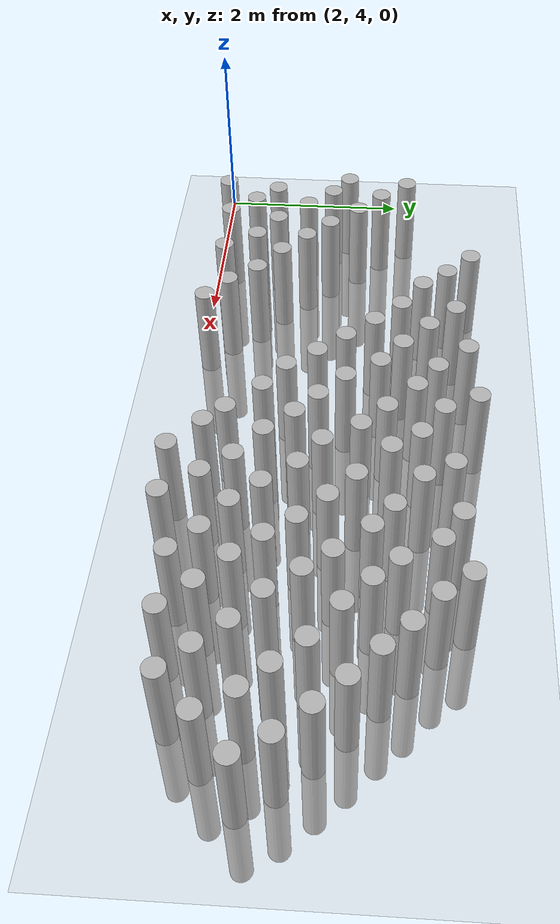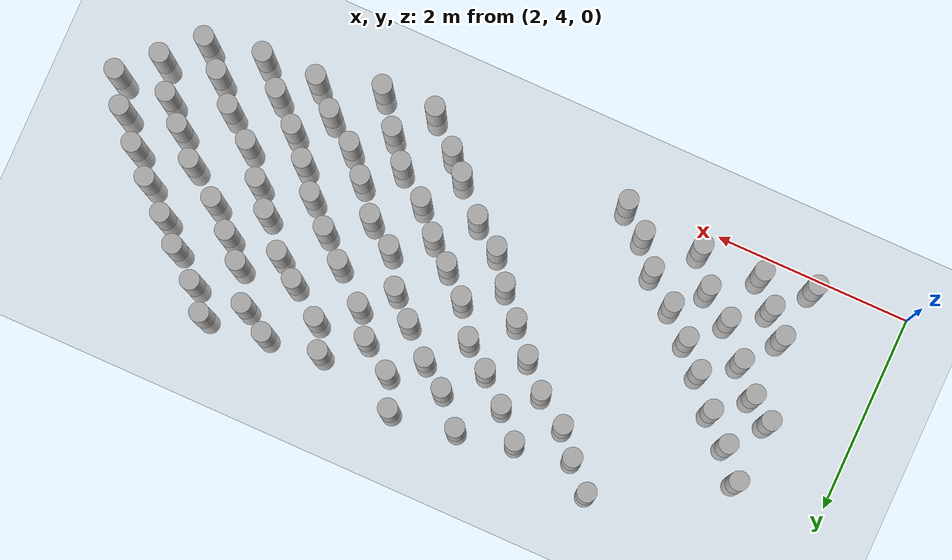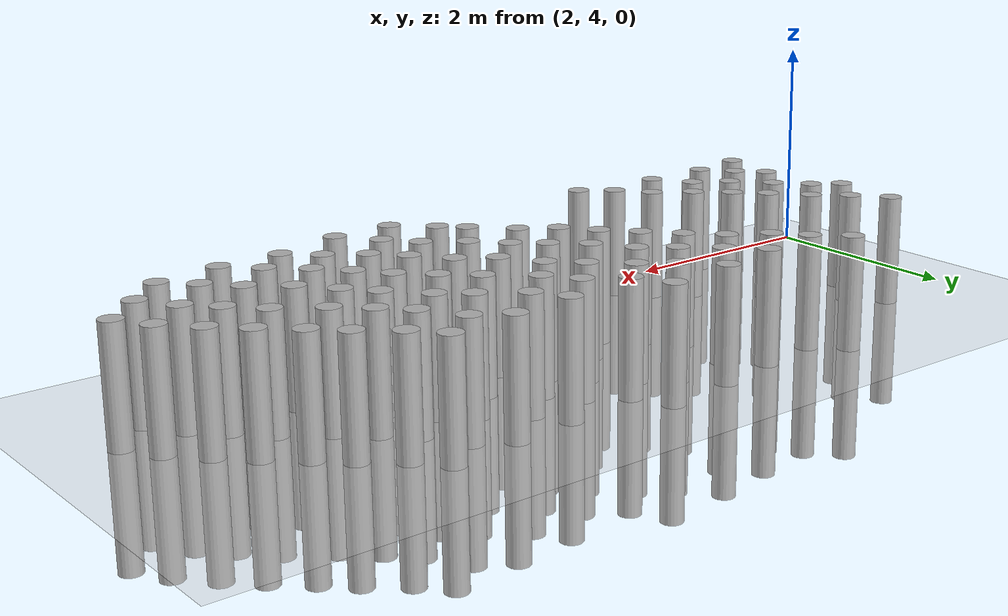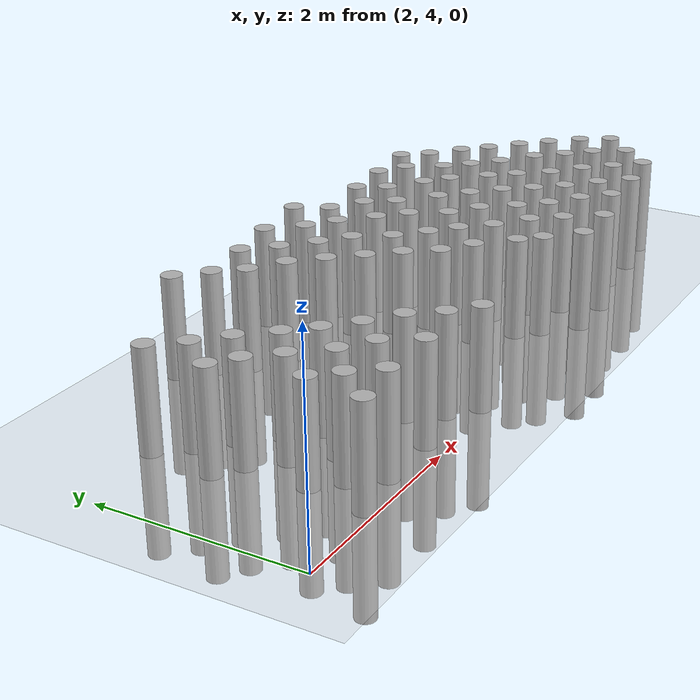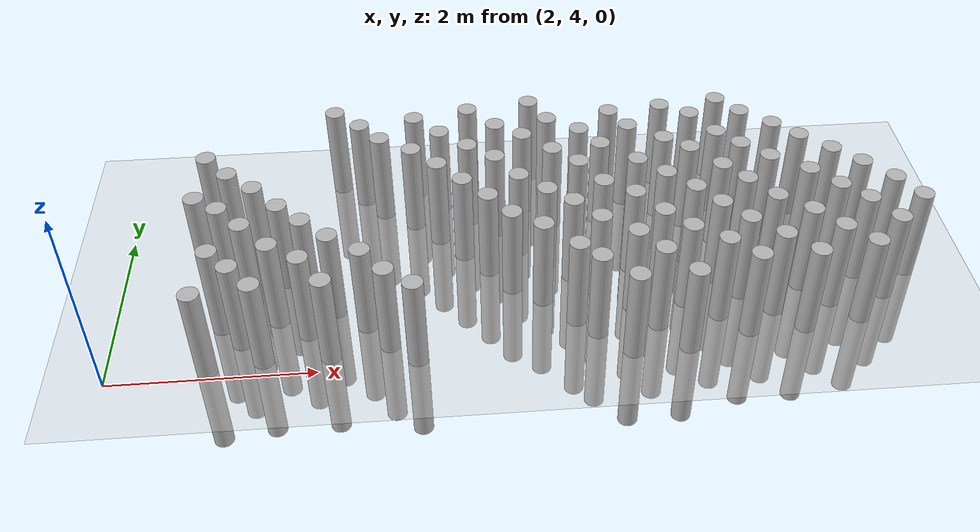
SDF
<sdf version="1.7">
 <world name="farmland_world">
  <model name="ground_plane">
   <static>1</static>
   <link name="link">
    <collision name="collision">
     <geometry><plane><normal>0 0 1</normal><size>40.0 40.0</size></plane></geometry>
     <surface><friction><ode><mu>100</mu><mu2>50</mu2></ode></friction></surface>
    </collision>
    <visual name="visual">
     <cast_shadows>0</cast_shadows>
     <geometry><plane><normal>0 0 1</normal><size>40.0 40.0</size></plane></geometry>
     <material>
      <script><uri>file://media/materials/scripts/gazebo.material</uri><name>Gazebo/Grey</name></script>
     </material>
    </visual>
   </link>
  </model>
  <model name="tree_2_52">
   <static>1</static>
   <link name="link">
    <collision name="collision">
     <geometry><cylinder><radius>0.1</radius><length>2.0</length></cylinder></geometry>
     <surface><friction><ode><mu>100</mu><mu2>50</mu2></ode></friction></surface>
    </collision>
    <visual name="visual">
     <geometry><cylinder><radius>0.1</radius><length>2.0</length></cylinder></geometry>
    </visual>
   </link>
   <pose>2.9489001663448877 4.1072925798245254 0 0 0 0</pose>
  </model>
  <model name="tree_2_88">
   <static>1</static>
   <link name="link">
    <collision name="collision">
     <geometry><cylinder><radius>0.1</radius><length>2.0</length></cylinder></geometry>
     <surface><friction><ode><mu>100</mu><mu2>50</mu2></ode></friction></surface>
    </collision>
    <visual name="visual">
     <geometry><cylinder><radius>0.1</radius><length>2.0</length></cylinder></geometry>
    </visual>
   </link>
   <pose>4.935990651242062 4.099398160405823 0 0 0 0</pose>
  </model>
  <model name="tree_2_89">
   <static>1</static>
   <link name="link">
    <collision name="collision">
     <geometry><cylinder><radius>0.1</radius><length>2.0</length></cylinder></geometry>
     <surface><friction><ode><mu>100</mu><mu2>50</mu2></ode></friction></surface>
    </collision>
    <visual name="visual">
     <geometry><cylinder><radius>0.1</radius><length>2.0</length></cylinder></geometry>
    </visual>
   </link>
   <pose>4.672233327055413 4.307275855355659 0 0 0 0</pose>
  </model>
  <model name="tree_2_90">
   <static>1</static>
   <link name="link">
    <collision name="collision">
     <geometry><cylinder><radius>0.1</radius><length>2.0</length></cylinder></geometry>
     <surface><friction><ode><mu>100</mu><mu2>50</mu2></ode></friction></surface>
    </collision>
    <visual name="visual">
     <geometry><cylinder><radius>0.1</radius><length>2.0</length></cylinder></geometry>
    </visual>
   </link>
   <pose>4.45335299349626 4.590218611323772 0 0 0 0</pose>
  </model>
  <model name="tree_2_91">
   <static>1</static>
   <link name="link">
    <collision name="collision">
     <geometry><cylinder><radius>0.1</radius><length>2.0</length></cylinder></geometry>
     <surface><friction><ode><mu>100</mu><mu2>50</mu2></ode></friction></surface>
    </collision>
    <visual name="visual">
     <geometry><cylinder><radius>0.1</radius><length>2.0</length></cylinder></geometry>
    </visual>
   </link>
   <pose>4.1443980630596675 4.81917371125957 0 0 0 0</pose>
  </model>
  <model name="tree_2_92">
   <static>1</static>
   <link name="link">
    <collision name="collision">
     <geometry><cylinder><radius>0.1</radius><length>2.0</length></cylinder></geometry>
     <surface><friction><ode><mu>100</mu><mu2>50</mu2></ode></friction></surface>
    </collision>
    <visual name="visual">
     <geometry><cylinder><radius>0.1</radius><length>2.0</length></cylinder></geometry>
    </visual>
   </link>
   <pose>3.8798400783259805 5.067151956207987 0 0 0 0</pose>
  </model>
  <model name="tree_2_93">
   <static>1</static>
   <link name="link">
    <collision name="collision">
     <geometry><cylinder><radius>0.1</radius><length>2.0</length></cylinder></geometry>
     <surface><friction><ode><mu>100</mu><mu2>50</mu2></ode></friction></surface>
    </collision>
    <visual name="visual">
     <geometry><cylinder><radius>0.1</radius><length>2.0</length></cylinder></geometry>
    </visual>
   </link>
   <pose>3.6448416500031633 5.3050235630585645 0 0 0 0</pose>
  </model>
  <model name="tree_2_94">
   <static>1</static>
   <link name="link">
    <collision name="collision">
     <geometry><cylinder><radius>0.1</radius><length>2.0</length></cylinder></geometry>
     <surface><friction><ode><mu>100</mu><mu2>50</mu2></ode></friction></surface>
    </collision>
    <visual name="visual">
     <geometry><cylinder><radius>0.1</radius><length>2.0</length></cylinder></geometry>
    </visual>
   </link>
   <pose>3.384849614259451 5.602406203497972 0 0 0 0</pose>
  </model>
  <model name="tree_2_95">
   <static>1</static>
   <link name="link">
    <collision name="collision">
     <geometry><cylinder><radius>0.1</radius><length>2.0</length></cylinder></geometry>
     <surface><friction><ode><mu>100</mu><mu2>50</mu2></ode></friction></surface>
    </collision>
    <visual name="visual">
     <geometry><cylinder><radius>0.1</radius><length>2.0</length></cylinder></geometry>
    </visual>
   </link>
   <pose>3.1173107896745393 5.845019985883678 0 0 0 0</pose>
  </model>
  <model name="tree_2_96">
   <static>1</static>
   <link name="link">
    <collision name="collision">
     <geometry><cylinder><radius>0.1</radius><length>2.0</length></cylinder></geometry>
     <surface><friction><ode><mu>100</mu><mu2>50</mu2></ode></friction></surface>
    </collision>
    <visual name="visual">
     <geometry><cylinder><radius>0.1</radius><length>2.0</length></cylinder></geometry>
    </visual>
   </link>
   <pose>2.8831499700633443 6.127902583696255 0 0 0 0</pose>
  </model>
  <model name="tree_2_124">
   <static>1</static>
   <link name="link">
    <collision name="collision">
     <geometry><cylinder><radius>0.1</radius><length>2.0</length></cylinder></geometry>
     <surface><friction><ode><mu>100</mu><mu2>50</mu2></ode></friction></surface>
    </collision>
    <visual name="visual">
     <geometry><cylinder><radius>0.1</radius><length>2.0</length></cylinder></geometry>
    </visual>
   </link>
   <pose>6.995804339897602 4.037243880707745 0 0 0 0</pose>
  </model>
  <model name="tree_2_125">
   <static>1</static>
   <link name="link">
    <collision name="collision">
     <geometry><cylinder><radius>0.1</radius><length>2.0</length></cylinder></geometry>
     <surface><friction><ode><mu>100</mu><mu2>50</mu2></ode></friction></surface>
    </collision>
    <visual name="visual">
     <geometry><cylinder><radius>0.1</radius><length>2.0</length></cylinder></geometry>
    </visual>
   </link>
   <pose>6.689996261853336 4.322970217811387 0 0 0 0</pose>
  </model>
  <model name="tree_2_126">
   <static>1</static>
   <link name="link">
    <collision name="collision">
     <geometry><cylinder><radius>0.1</radius><length>2.0</length></cylinder></geometry>
     <surface><friction><ode><mu>100</mu><mu2>50</mu2></ode></friction></surface>
    </collision>
    <visual name="visual">
     <geometry><cylinder><radius>0.1</radius><length>2.0</length></cylinder></geometry>
    </visual>
   </link>
   <pose>6.504435513502165 4.507561749069126 0 0 0 0</pose>
  </model>
  <model name="tree_2_127">
   <static>1</static>
   <link name="link">
    <collision name="collision">
     <geometry><cylinder><radius>0.1</radius><length>2.0</length></cylinder></geometry>
     <surface><friction><ode><mu>100</mu><mu2>50</mu2></ode></friction></surface>
    </collision>
    <visual name="visual">
     <geometry><cylinder><radius>0.1</radius><length>2.0</length></cylinder></geometry>
    </visual>
   </link>
   <pose>6.198581848636614 4.820912335371963 0 0 0 0</pose>
  </model>
  <model name="tree_2_128">
   <static>1</static>
   <link name="link">
    <collision name="collision">
     <geometry><cylinder><radius>0.1</radius><length>2.0</length></cylinder></geometry>
     <surface><friction><ode><mu>100</mu><mu2>50</mu2></ode></friction></surface>
    </collision>
    <visual name="visual">
     <geometry><cylinder><radius>0.1</radius><length>2.0</length></cylinder></geometry>
    </visual>
   </link>
   <pose>5.909500061613501 5.020619323794721 0 0 0 0</pose>
  </model>
  <model name="tree_2_129">
   <static>1</static>
   <link name="link">
    <collision name="collision">
     <geometry><cylinder><radius>0.1</radius><length>2.0</length></cylinder></geometry>
     <surface><friction><ode><mu>100</mu><mu2>50</mu2></ode></friction></surface>
    </collision>
    <visual name="visual">
     <geometry><cylinder><radius>0.1</radius><length>2.0</length></cylinder></geometry>
    </visual>
   </link>
   <pose>5.694934780227359 5.305046025492906 0 0 0 0</pose>
  </model>
  <model name="tree_2_130">
   <static>1</static>
   <link name="link">
    <collision name="collision">
     <geometry><cylinder><radius>0.1</radius><length>2.0</length></cylinder></geometry>
     <surface><friction><ode><mu>100</mu><mu2>50</mu2></ode></friction></surface>
    </collision>
    <visual name="visual">
     <geometry><cylinder><radius>0.1</radius><length>2.0</length></cylinder></geometry>
    </visual>
   </link>
   <pose>5.4549401458098945 5.571611618630078 0 0 0 0</pose>
  </model>
  <model name="tree_2_131">
   <static>1</static>
   <link name="link">
    <collision name="collision">
     <geometry><cylinder><radius>0.1</radius><length>2.0</length></cylinder></geometry>
     <surface><friction><ode><mu>100</mu><mu2>50</mu2></ode></friction></surface>
    </collision>
    <visual name="visual">
     <geometry><cylinder><radius>0.1</radius><length>2.0</length></cylinder></geometry>
    </visual>
   </link>
   <pose>5.2123429141032895 5.847522400009467 0 0 0 0</pose>
  </model>
  <model name="tree_2_132">
   <static>1</static>
   <link name="link">
    <collision name="collision">
     <geometry><cylinder><radius>0.1</radius><length>2.0</length></cylinder></geometry>
     <surface><friction><ode><mu>100</mu><mu2>50</mu2></ode></friction></surface>
    </collision>
    <visual name="visual">
     <geometry><cylinder><radius>0.1</radius><length>2.0</length></cylinder></geometry>
    </visual>
   </link>
   <pose>4.955706828155372 6.109414722371271 0 0 0 0</pose>
  </model>
  <model name="tree_2_133">
   <static>1</static>
   <link name="link">
    <collision name="collision">
     <geometry><cylinder><radius>0.1</radius><length>2.0</length></cylinder></geometry>
     <surface><friction><ode><mu>100</mu><mu2>50</mu2></ode></friction></surface>
    </collision>
    <visual name="visual">
     <geometry><cylinder><radius>0.1</radius><length>2.0</length></cylinder></geometry>
    </visual>
   </link>
   <pose>4.633271214124874 6.320818459886796 0 0 0 0</pose>
  </model>
  <model name="tree_2_134">
   <static>1</static>
   <link name="link">
    <collision name="collision">
     <geometry><cylinder><radius>0.1</radius><length>2.0</length></cylinder></geometry>
     <surface><friction><ode><mu>100</mu><mu2>50</mu2></ode></friction></surface>
    </collision>
    <visual name="visual">
     <geometry><cylinder><radius>0.1</radius><length>2.0</length></cylinder></geometry>
    </visual>
   </link>
   <pose>4.4245223692842295 6.570374595479188 0 0 0 0</pose>
  </model>
  <model name="tree_2_135">
   <static>1</static>
   <link name="link">
    <collision name="collision">
     <geometry><cylinder><radius>0.1</radius><length>2.0</length></cylinder></geometry>
     <surface><friction><ode><mu>100</mu><mu2>50</mu2></ode></friction></surface>
    </collision>
    <visual name="visual">
     <geometry><cylinder><radius>0.1</radius><length>2.0</length></cylinder></geometry>
    </visual>
   </link>
   <pose>4.164202467520245 6.818375993160574 0 0 0 0</pose>
  </model>
  <model name="tree_2_161">
   <static>1</static>
   <link name="link">
    <collision name="collision">
     <geometry><cylinder><radius>0.1</radius><length>2.0</length></cylinder></geometry>
     <surface><friction><ode><mu>100</mu><mu2>50</mu2></ode></friction></surface>
    </collision>
    <visual name="visual">
     <geometry><cylinder><radius>0.1</radius><length>2.0</length></cylinder></geometry>
    </visual>
   </link>
   <pose>8.723759081778155 4.230052489268849 0 0 0 0</pose>
  </model>
  <model name="tree_2_162">
   <static>1</static>
   <link name="link">
    <collision name="collision">
     <geometry><cylinder><radius>0.1</radius><length>2.0</length></cylinder></geometry>
     <surface><friction><ode><mu>100</mu><mu2>50</mu2></ode></friction></surface>
    </collision>
    <visual name="visual">
     <geometry><cylinder><radius>0.1</radius><length>2.0</length></cylinder></geometry>
    </visual>
   </link>
   <pose>8.464013605118216 4.496831133225955 0 0 0 0</pose>
  </model>
  <model name="tree_2_163">
   <static>1</static>
   <link name="link">
    <collision name="collision">
     <geometry><cylinder><radius>0.1</radius><length>2.0</length></cylinder></geometry>
     <surface><friction><ode><mu>100</mu><mu2>50</mu2></ode></friction></surface>
    </collision>
    <visual name="visual">
     <geometry><cylinder><radius>0.1</radius><length>2.0</length></cylinder></geometry>
    </visual>
   </link>
   <pose>8.185481908792912 4.754094075828776 0 0 0 0</pose>
  </model>
  <model name="tree_2_164">
   <static>1</static>
   <link name="link">
    <collision name="collision">
     <geometry><cylinder><radius>0.1</radius><length>2.0</length></cylinder></geometry>
     <surface><friction><ode><mu>100</mu><mu2>50</mu2></ode></friction></surface>
    </collision>
    <visual name="visual">
     <geometry><cylinder><radius>0.1</radius><length>2.0</length></cylinder></geometry>
    </visual>
   </link>
   <pose>7.960736139655391 5.008882329968819 0 0 0 0</pose>
  </model>
  <model name="tree_2_165">
   <static>1</static>
   <link name="link">
    <collision name="collision">
     <geometry><cylinder><radius>0.1</radius><length>2.0</length></cylinder></geometry>
     <surface><friction><ode><mu>100</mu><mu2>50</mu2></ode></friction></surface>
    </collision>
    <visual name="visual">
     <geometry><cylinder><radius>0.1</radius><length>2.0</length></cylinder></geometry>
    </visual>
   </link>
   <pose>7.756280298727698 5.272489505475336 0 0 0 0</pose>
  </model>
  <model name="tree_2_166">
   <static>1</static>
   <link name="link">
    <collision name="collision">
     <geometry><cylinder><radius>0.1</radius><length>2.0</length></cylinder></geometry>
     <surface><friction><ode><mu>100</mu><mu2>50</mu2></ode></friction></surface>
    </collision>
    <visual name="visual">
     <geometry><cylinder><radius>0.1</radius><length>2.0</length></cylinder></geometry>
    </visual>
   </link>
   <pose>7.504111304434159 5.519745688500191 0 0 0 0</pose>
  </model>
  <model name="tree_2_167">
   <static>1</static>
   <link name="link">
    <collision name="collision">
     <geometry><cylinder><radius>0.1</radius><length>2.0</length></cylinder></geometry>
     <surface><friction><ode><mu>100</mu><mu2>50</mu2></ode></friction></surface>
    </collision>
    <visual name="visual">
     <geometry><cylinder><radius>0.1</radius><length>2.0</length></cylinder></geometry>
    </visual>
   </link>
   <pose>7.248112366708011 5.7580440116313 0 0 0 0</pose>
  </model>
  <model name="tree_2_168">
   <static>1</static>
   <link name="link">
    <collision name="collision">
     <geometry><cylinder><radius>0.1</radius><length>2.0</length></cylinder></geometry>
     <surface><friction><ode><mu>100</mu><mu2>50</mu2></ode></friction></surface>
    </collision>
    <visual name="visual">
     <geometry><cylinder><radius>0.1</radius><length>2.0</length></cylinder></geometry>
    </visual>
   </link>
   <pose>6.9044267505686765 6.055788266485023 0 0 0 0</pose>
  </model>
  <model name="tree_2_169">
   <static>1</static>
   <link name="link">
    <collision name="collision">
     <geometry><cylinder><radius>0.1</radius><length>2.0</length></cylinder></geometry>
     <surface><friction><ode><mu>100</mu><mu2>50</mu2></ode></friction></surface>
    </collision>
    <visual name="visual">
     <geometry><cylinder><radius>0.1</radius><length>2.0</length></cylinder></geometry>
    </visual>
   </link>
   <pose>6.71382783407727 6.324975139596418 0 0 0 0</pose>
  </model>
  <model name="tree_2_170">
   <static>1</static>
   <link name="link">
    <collision name="collision">
     <geometry><cylinder><radius>0.1</radius><length>2.0</length></cylinder></geometry>
     <surface><friction><ode><mu>100</mu><mu2>50</mu2></ode></friction></surface>
    </collision>
    <visual name="visual">
     <geometry><cylinder><radius>0.1</radius><length>2.0</length></cylinder></geometry>
    </visual>
   </link>
   <pose>6.39533901068458 6.536943291326789 0 0 0 0</pose>
  </model>
  <model name="tree_2_171">
   <static>1</static>
   <link name="link">
    <collision name="collision">
     <geometry><cylinder><radius>0.1</radius><length>2.0</length></cylinder></geometry>
     <surface><friction><ode><mu>100</mu><mu2>50</mu2></ode></friction></surface>
    </collision>
    <visual name="visual">
     <geometry><cylinder><radius>0.1</radius><length>2.0</length></cylinder></geometry>
    </visual>
   </link>
   <pose>6.229465477603689 6.8600202042736145 0 0 0 0</pose>
  </model>
  <model name="tree_2_200">
   <static>1</static>
   <link name="link">
    <collision name="collision">
     <geometry><cylinder><radius>0.1</radius><length>2.0</length></cylinder></geometry>
     <surface><friction><ode><mu>100</mu><mu2>50</mu2></ode></friction></surface>
    </collision>
    <visual name="visual">
     <geometry><cylinder><radius>0.1</radius><length>2.0</length></cylinder></geometry>
    </visual>
   </link>
   <pose>9.951865544746974 4.957954119267559 0 0 0 0</pose>
  </model>
  <model name="tree_2_201">
   <static>1</static>
   <link name="link">
    <collision name="collision">
     <geometry><cylinder><radius>0.1</radius><length>2.0</length></cylinder></geometry>
     <surface><friction><ode><mu>100</mu><mu2>50</mu2></ode></friction></surface>
    </collision>
    <visual name="visual">
     <geometry><cylinder><radius>0.1</radius><length>2.0</length></cylinder></geometry>
    </visual>
   </link>
   <pose>9.765100336267817 5.257357832635052 0 0 0 0</pose>
  </model>
  <model name="tree_2_202">
   <static>1</static>
   <link name="link">
    <collision name="collision">
     <geometry><cylinder><radius>0.1</radius><length>2.0</length></cylinder></geometry>
     <surface><friction><ode><mu>100</mu><mu2>50</mu2></ode></friction></surface>
    </collision>
    <visual name="visual">
     <geometry><cylinder><radius>0.1</radius><length>2.0</length></cylinder></geometry>
    </visual>
   </link>
   <pose>9.512087793416145 5.533895385273059 0 0 0 0</pose>
  </model>
  <model name="tree_2_203">
   <static>1</static>
   <link name="link">
    <collision name="collision">
     <geometry><cylinder><radius>0.1</radius><length>2.0</length></cylinder></geometry>
     <surface><friction><ode><mu>100</mu><mu2>50</mu2></ode></friction></surface>
    </collision>
    <visual name="visual">
     <geometry><cylinder><radius>0.1</radius><length>2.0</length></cylinder></geometry>
    </visual>
   </link>
   <pose>9.262635921555011 5.784951058161423 0 0 0 0</pose>
  </model>
  <model name="tree_2_204">
   <static>1</static>
   <link name="link">
    <collision name="collision">
     <geometry><cylinder><radius>0.1</radius><length>2.0</length></cylinder></geometry>
     <surface><friction><ode><mu>100</mu><mu2>50</mu2></ode></friction></surface>
    </collision>
    <visual name="visual">
     <geometry><cylinder><radius>0.1</radius><length>2.0</length></cylinder></geometry>
    </visual>
   </link>
   <pose>8.985373275564772 6.0366860929462876 0 0 0 0</pose>
  </model>
  <model name="tree_2_205">
   <static>1</static>
   <link name="link">
    <collision name="collision">
     <geometry><cylinder><radius>0.1</radius><length>2.0</length></cylinder></geometry>
     <surface><friction><ode><mu>100</mu><mu2>50</mu2></ode></friction></surface>
    </collision>
    <visual name="visual">
     <geometry><cylinder><radius>0.1</radius><length>2.0</length></cylinder></geometry>
    </visual>
   </link>
   <pose>8.755339287459256 6.266235962762347 0 0 0 0</pose>
  </model>
  <model name="tree_2_206">
   <static>1</static>
   <link name="link">
    <collision name="collision">
     <geometry><cylinder><radius>0.1</radius><length>2.0</length></cylinder></geometry>
     <surface><friction><ode><mu>100</mu><mu2>50</mu2></ode></friction></surface>
    </collision>
    <visual name="visual">
     <geometry><cylinder><radius>0.1</radius><length>2.0</length></cylinder></geometry>
    </visual>
   </link>
   <pose>8.46003186808463 6.511156102756865 0 0 0 0</pose>
  </model>
  <model name="tree_2_207">
   <static>1</static>
   <link name="link">
    <collision name="collision">
     <geometry><cylinder><radius>0.1</radius><length>2.0</length></cylinder></geometry>
     <surface><friction><ode><mu>100</mu><mu2>50</mu2></ode></friction></surface>
    </collision>
    <visual name="visual">
     <geometry><cylinder><radius>0.1</radius><length>2.0</length></cylinder></geometry>
    </visual>
   </link>
   <pose>8.250710063734372 6.757314291966133 0 0 0 0</pose>
  </model>
  <model name="tree_2_331">
   <static>1</static>
   <link name="link">
    <collision name="collision">
     <geometry><cylinder><radius>0.1</radius><length>2.0</length></cylinder></geometry>
     <surface><friction><ode><mu>100</mu><mu2>50</mu2></ode></friction></surface>
    </collision>
    <visual name="visual">
     <geometry><cylinder><radius>0.1</radius><length>2.0</length></cylinder></geometry>
    </visual>
   </link>
   <pose>3.4723785210747784 4.1930251278533435 0 0 0 0</pose>
  </model>
  <model name="tree_2_332">
   <static>1</static>
   <link name="link">
    <collision name="collision">
     <geometry><cylinder><radius>0.1</radius><length>2.0</length></cylinder></geometry>
     <surface><friction><ode><mu>100</mu><mu2>50</mu2></ode></friction></surface>
    </collision>
    <visual name="visual">
     <geometry><cylinder><radius>0.1</radius><length>2.0</length></cylinder></geometry>
    </visual>
   </link>
   <pose>3.250186283082213 4.455962815946782 0 0 0 0</pose>
  </model>
  <model name="tree_2_333">
   <static>1</static>
   <link name="link">
    <collision name="collision">
     <geometry><cylinder><radius>0.1</radius><length>2.0</length></cylinder></geometry>
     <surface><friction><ode><mu>100</mu><mu2>50</mu2></ode></friction></surface>
    </collision>
    <visual name="visual">
     <geometry><cylinder><radius>0.1</radius><length>2.0</length></cylinder></geometry>
    </visual>
   </link>
   <pose>3.042184315217604 4.679464457439803 0 0 0 0</pose>
  </model>
  <model name="tree_2_370">
   <static>1</static>
   <link name="link">
    <collision name="collision">
     <geometry><cylinder><radius>0.1</radius><length>2.0</length></cylinder></geometry>
     <surface><friction><ode><mu>100</mu><mu2>50</mu2></ode></friction></surface>
    </collision>
    <visual name="visual">
     <geometry><cylinder><radius>0.1</radius><length>2.0</length></cylinder></geometry>
    </visual>
   </link>
   <pose>4.108145397068614 4.198623231685676 0 0 0 0</pose>
  </model>
  <model name="tree_2_371">
   <static>1</static>
   <link name="link">
    <collision name="collision">
     <geometry><cylinder><radius>0.1</radius><length>2.0</length></cylinder></geometry>
     <surface><friction><ode><mu>100</mu><mu2>50</mu2></ode></friction></surface>
    </collision>
    <visual name="visual">
     <geometry><cylinder><radius>0.1</radius><length>2.0</length></cylinder></geometry>
    </visual>
   </link>
   <pose>3.8872291148343137 4.528681216690485 0 0 0 0</pose>
  </model>
  <model name="tree_2_372">
   <static>1</static>
   <link name="link">
    <collision name="collision">
     <geometry><cylinder><radius>0.1</radius><length>2.0</length></cylinder></geometry>
     <surface><friction><ode><mu>100</mu><mu2>50</mu2></ode></friction></surface>
    </collision>
    <visual name="visual">
     <geometry><cylinder><radius>0.1</radius><length>2.0</length></cylinder></geometry>
    </visual>
   </link>
   <pose>3.588783948729346 4.731350645761448 0 0 0 0</pose>
  </model>
  <model name="tree_2_373">
   <static>1</static>
   <link name="link">
    <collision name="collision">
     <geometry><cylinder><radius>0.1</radius><length>2.0</length></cylinder></geometry>
     <surface><friction><ode><mu>100</mu><mu2>50</mu2></ode></friction></surface>
    </collision>
    <visual name="visual">
     <geometry><cylinder><radius>0.1</radius><length>2.0</length></cylinder></geometry>
    </visual>
   </link>
   <pose>3.312192383889202 5.04264344963203 0 0 0 0</pose>
  </model>
  <model name="tree_2_374">
   <static>1</static>
   <link name="link">
    <collision name="collision">
     <geometry><cylinder><radius>0.1</radius><length>2.0</length></cylinder></geometry>
     <surface><friction><ode><mu>100</mu><mu2>50</mu2></ode></friction></surface>
    </collision>
    <visual name="visual">
     <geometry><cylinder><radius>0.1</radius><length>2.0</length></cylinder></geometry>
    </visual>
   </link>
   <pose>3.0720141753540444 5.306913094308102 0 0 0 0</pose>
  </model>
  <model name="tree_2_375">
   <static>1</static>
   <link name="link">
    <collision name="collision">
     <geometry><cylinder><radius>0.1</radius><length>2.0</length></cylinder></geometry>
     <surface><friction><ode><mu>100</mu><mu2>50</mu2></ode></friction></surface>
    </collision>
    <visual name="visual">
     <geometry><cylinder><radius>0.1</radius><length>2.0</length></cylinder></geometry>
    </visual>
   </link>
   <pose>2.8322172993404195 5.476451714917048 0 0 0 0</pose>
  </model>
  <model name="tree_2_403">
   <static>1</static>
   <link name="link">
    <collision name="collision">
     <geometry><cylinder><radius>0.1</radius><length>2.0</length></cylinder></geometry>
     <surface><friction><ode><mu>100</mu><mu2>50</mu2></ode></friction></surface>
    </collision>
    <visual name="visual">
     <geometry><cylinder><radius>0.1</radius><length>2.0</length></cylinder></geometry>
    </visual>
   </link>
   <pose>7.544634498931096 4.050388613636205 0 0 0 0</pose>
  </model>
  <model name="tree_2_404">
   <static>1</static>
   <link name="link">
    <collision name="collision">
     <geometry><cylinder><radius>0.1</radius><length>2.0</length></cylinder></geometry>
     <surface><friction><ode><mu>100</mu><mu2>50</mu2></ode></friction></surface>
    </collision>
    <visual name="visual">
     <geometry><cylinder><radius>0.1</radius><length>2.0</length></cylinder></geometry>
    </visual>
   </link>
   <pose>7.295927260330039 4.380964400134503 0 0 0 0</pose>
  </model>
  <model name="tree_2_405">
   <static>1</static>
   <link name="link">
    <collision name="collision">
     <geometry><cylinder><radius>0.1</radius><length>2.0</length></cylinder></geometry>
     <surface><friction><ode><mu>100</mu><mu2>50</mu2></ode></friction></surface>
    </collision>
    <visual name="visual">
     <geometry><cylinder><radius>0.1</radius><length>2.0</length></cylinder></geometry>
    </visual>
   </link>
   <pose>7.081111587005149 4.648895916898264 0 0 0 0</pose>
  </model>
  <model name="tree_2_406">
   <static>1</static>
   <link name="link">
    <collision name="collision">
     <geometry><cylinder><radius>0.1</radius><length>2.0</length></cylinder></geometry>
     <surface><friction><ode><mu>100</mu><mu2>50</mu2></ode></friction></surface>
    </collision>
    <visual name="visual">
     <geometry><cylinder><radius>0.1</radius><length>2.0</length></cylinder></geometry>
    </visual>
   </link>
   <pose>6.765317151708995 4.888092208563387 0 0 0 0</pose>
  </model>
  <model name="tree_2_407">
   <static>1</static>
   <link name="link">
    <collision name="collision">
     <geometry><cylinder><radius>0.1</radius><length>2.0</length></cylinder></geometry>
     <surface><friction><ode><mu>100</mu><mu2>50</mu2></ode></friction></surface>
    </collision>
    <visual name="visual">
     <geometry><cylinder><radius>0.1</radius><length>2.0</length></cylinder></geometry>
    </visual>
   </link>
   <pose>6.52588173283957 5.1515424672009 0 0 0 0</pose>
  </model>
  <model name="tree_2_408">
   <static>1</static>
   <link name="link">
    <collision name="collision">
     <geometry><cylinder><radius>0.1</radius><length>2.0</length></cylinder></geometry>
     <surface><friction><ode><mu>100</mu><mu2>50</mu2></ode></friction></surface>
    </collision>
    <visual name="visual">
     <geometry><cylinder><radius>0.1</radius><length>2.0</length></cylinder></geometry>
    </visual>
   </link>
   <pose>6.285687568058642 5.353431872375348 0 0 0 0</pose>
  </model>
  <model name="tree_2_409">
   <static>1</static>
   <link name="link">
    <collision name="collision">
     <geometry><cylinder><radius>0.1</radius><length>2.0</length></cylinder></geometry>
     <surface><friction><ode><mu>100</mu><mu2>50</mu2></ode></friction></surface>
    </collision>
    <visual name="visual">
     <geometry><cylinder><radius>0.1</radius><length>2.0</length></cylinder></geometry>
    </visual>
   </link>
   <pose>6.023686312907908 5.596848931336823 0 0 0 0</pose>
  </model>
  <model name="tree_2_410">
   <static>1</static>
   <link name="link">
    <collision name="collision">
     <geometry><cylinder><radius>0.1</radius><length>2.0</length></cylinder></geometry>
     <surface><friction><ode><mu>100</mu><mu2>50</mu2></ode></friction></surface>
    </collision>
    <visual name="visual">
     <geometry><cylinder><radius>0.1</radius><length>2.0</length></cylinder></geometry>
    </visual>
   </link>
   <pose>5.805303905832502 5.923341000223599 0 0 0 0</pose>
  </model>
  <model name="tree_2_411">
   <static>1</static>
   <link name="link">
    <collision name="collision">
     <geometry><cylinder><radius>0.1</radius><length>2.0</length></cylinder></geometry>
     <surface><friction><ode><mu>100</mu><mu2>50</mu2></ode></friction></surface>
    </collision>
    <visual name="visual">
     <geometry><cylinder><radius>0.1</radius><length>2.0</length></cylinder></geometry>
    </visual>
   </link>
   <pose>5.535026551399195 6.134262788942675 0 0 0 0</pose>
  </model>
  <model name="tree_2_412">
   <static>1</static>
   <link name="link">
    <collision name="collision">
     <geometry><cylinder><radius>0.1</radius><length>2.0</length></cylinder></geometry>
     <surface><friction><ode><mu>100</mu><mu2>50</mu2></ode></friction></surface>
    </collision>
    <visual name="visual">
     <geometry><cylinder><radius>0.1</radius><length>2.0</length></cylinder></geometry>
    </visual>
   </link>
   <pose>5.254145157990862 6.38798324798015 0 0 0 0</pose>
  </model>
  <model name="tree_2_413">
   <static>1</static>
   <link name="link">
    <collision name="collision">
     <geometry><cylinder><radius>0.1</radius><length>2.0</length></cylinder></geometry>
     <surface><friction><ode><mu>100</mu><mu2>50</mu2></ode></friction></surface>
    </collision>
    <visual name="visual">
     <geometry><cylinder><radius>0.1</radius><length>2.0</length></cylinder></geometry>
    </visual>
   </link>
   <pose>4.995803836524805 6.6552981316864095 0 0 0 0</pose>
  </model>
  <model name="tree_2_442">
   <static>1</static>
   <link name="link">
    <collision name="collision">
     <geometry><cylinder><radius>0.1</radius><length>2.0</length></cylinder></geometry>
     <surface><friction><ode><mu>100</mu><mu2>50</mu2></ode></friction></surface>
    </collision>
    <visual name="visual">
     <geometry><cylinder><radius>0.1</radius><length>2.0</length></cylinder></geometry>
    </visual>
   </link>
   <pose>8.165369735180885 4.2243844622397395 0 0 0 0</pose>
  </model>
  <model name="tree_2_443">
   <static>1</static>
   <link name="link">
    <collision name="collision">
     <geometry><cylinder><radius>0.1</radius><length>2.0</length></cylinder></geometry>
     <surface><friction><ode><mu>100</mu><mu2>50</mu2></ode></friction></surface>
    </collision>
    <visual name="visual">
     <geometry><cylinder><radius>0.1</radius><length>2.0</length></cylinder></geometry>
    </visual>
   </link>
   <pose>7.9144264830112965 4.466713121391918 0 0 0 0</pose>
  </model>
  <model name="tree_2_444">
   <static>1</static>
   <link name="link">
    <collision name="collision">
     <geometry><cylinder><radius>0.1</radius><length>2.0</length></cylinder></geometry>
     <surface><friction><ode><mu>100</mu><mu2>50</mu2></ode></friction></surface>
    </collision>
    <visual name="visual">
     <geometry><cylinder><radius>0.1</radius><length>2.0</length></cylinder></geometry>
    </visual>
   </link>
   <pose>7.610737860165667 4.679184892495599 0 0 0 0</pose>
  </model>
  <model name="tree_2_445">
   <static>1</static>
   <link name="link">
    <collision name="collision">
     <geometry><cylinder><radius>0.1</radius><length>2.0</length></cylinder></geometry>
     <surface><friction><ode><mu>100</mu><mu2>50</mu2></ode></friction></surface>
    </collision>
    <visual name="visual">
     <geometry><cylinder><radius>0.1</radius><length>2.0</length></cylinder></geometry>
    </visual>
   </link>
   <pose>7.383409929323449 4.930059286767833 0 0 0 0</pose>
  </model>
  <model name="tree_2_446">
   <static>1</static>
   <link name="link">
    <collision name="collision">
     <geometry><cylinder><radius>0.1</radius><length>2.0</length></cylinder></geometry>
     <surface><friction><ode><mu>100</mu><mu2>50</mu2></ode></friction></surface>
    </collision>
    <visual name="visual">
     <geometry><cylinder><radius>0.1</radius><length>2.0</length></cylinder></geometry>
    </visual>
   </link>
   <pose>7.145444819897257 5.231553360799344 0 0 0 0</pose>
  </model>
  <model name="tree_2_447">
   <static>1</static>
   <link name="link">
    <collision name="collision">
     <geometry><cylinder><radius>0.1</radius><length>2.0</length></cylinder></geometry>
     <surface><friction><ode><mu>100</mu><mu2>50</mu2></ode></friction></surface>
    </collision>
    <visual name="visual">
     <geometry><cylinder><radius>0.1</radius><length>2.0</length></cylinder></geometry>
    </visual>
   </link>
   <pose>6.857667126363053 5.430688397204933 0 0 0 0</pose>
  </model>
  <model name="tree_2_448">
   <static>1</static>
   <link name="link">
    <collision name="collision">
     <geometry><cylinder><radius>0.1</radius><length>2.0</length></cylinder></geometry>
     <surface><friction><ode><mu>100</mu><mu2>50</mu2></ode></friction></surface>
    </collision>
    <visual name="visual">
     <geometry><cylinder><radius>0.1</radius><length>2.0</length></cylinder></geometry>
    </visual>
   </link>
   <pose>6.647150378855962 5.77087117860612 0 0 0 0</pose>
  </model>
  <model name="tree_2_449">
   <static>1</static>
   <link name="link">
    <collision name="collision">
     <geometry><cylinder><radius>0.1</radius><length>2.0</length></cylinder></geometry>
     <surface><friction><ode><mu>100</mu><mu2>50</mu2></ode></friction></surface>
    </collision>
    <visual name="visual">
     <geometry><cylinder><radius>0.1</radius><length>2.0</length></cylinder></geometry>
    </visual>
   </link>
   <pose>6.402800474849579 6.00365259511347 0 0 0 0</pose>
  </model>
  <model name="tree_2_450">
   <static>1</static>
   <link name="link">
    <collision name="collision">
     <geometry><cylinder><radius>0.1</radius><length>2.0</length></cylinder></geometry>
     <surface><friction><ode><mu>100</mu><mu2>50</mu2></ode></friction></surface>
    </collision>
    <visual name="visual">
     <geometry><cylinder><radius>0.1</radius><length>2.0</length></cylinder></geometry>
    </visual>
   </link>
   <pose>6.113048469657452 6.276217783849593 0 0 0 0</pose>
  </model>
  <model name="tree_2_451">
   <static>1</static>
   <link name="link">
    <collision name="collision">
     <geometry><cylinder><radius>0.1</radius><length>2.0</length></cylinder></geometry>
     <surface><friction><ode><mu>100</mu><mu2>50</mu2></ode></friction></surface>
    </collision>
    <visual name="visual">
     <geometry><cylinder><radius>0.1</radius><length>2.0</length></cylinder></geometry>
    </visual>
   </link>
   <pose>5.842931056152366 6.474202556440473 0 0 0 0</pose>
  </model>
  <model name="tree_2_452">
   <static>1</static>
   <link name="link">
    <collision name="collision">
     <geometry><cylinder><radius>0.1</radius><length>2.0</length></cylinder></geometry>
     <surface><friction><ode><mu>100</mu><mu2>50</mu2></ode></friction></surface>
    </collision>
    <visual name="visual">
     <geometry><cylinder><radius>0.1</radius><length>2.0</length></cylinder></geometry>
    </visual>
   </link>
   <pose>5.568861879991258 6.767939105792396 0 0 0 0</pose>
  </model>
  <model name="tree_2_480">
   <static>1</static>
   <link name="link">
    <collision name="collision">
     <geometry><cylinder><radius>0.1</radius><length>2.0</length></cylinder></geometry>
     <surface><friction><ode><mu>100</mu><mu2>50</mu2></ode></friction></surface>
    </collision>
    <visual name="visual">
     <geometry><cylinder><radius>0.1</radius><length>2.0</length></cylinder></geometry>
    </visual>
   </link>
   <pose>9.297030249408659 4.320571392668737 0 0 0 0</pose>
  </model>
  <model name="tree_2_481">
   <static>1</static>
   <link name="link">
    <collision name="collision">
     <geometry><cylinder><radius>0.1</radius><length>2.0</length></cylinder></geometry>
     <surface><friction><ode><mu>100</mu><mu2>50</mu2></ode></friction></surface>
    </collision>
    <visual name="visual">
     <geometry><cylinder><radius>0.1</radius><length>2.0</length></cylinder></geometry>
    </visual>
   </link>
   <pose>9.056257438929677 4.566049511956532 0 0 0 0</pose>
  </model>
  <model name="tree_2_482">
   <static>1</static>
   <link name="link">
    <collision name="collision">
     <geometry><cylinder><radius>0.1</radius><length>2.0</length></cylinder></geometry>
     <surface><friction><ode><mu>100</mu><mu2>50</mu2></ode></friction></surface>
    </collision>
    <visual name="visual">
     <geometry><cylinder><radius>0.1</radius><length>2.0</length></cylinder></geometry>
    </visual>
   </link>
   <pose>8.819868683675926 4.826138516567737 0 0 0 0</pose>
  </model>
  <model name="tree_2_483">
   <static>1</static>
   <link name="link">
    <collision name="collision">
     <geometry><cylinder><radius>0.1</radius><length>2.0</length></cylinder></geometry>
     <surface><friction><ode><mu>100</mu><mu2>50</mu2></ode></friction></surface>
    </collision>
    <visual name="visual">
     <geometry><cylinder><radius>0.1</radius><length>2.0</length></cylinder></geometry>
    </visual>
   </link>
   <pose>8.523212618966852 5.067047380288621 0 0 0 0</pose>
  </model>
  <model name="tree_2_484">
   <static>1</static>
   <link name="link">
    <collision name="collision">
     <geometry><cylinder><radius>0.1</radius><length>2.0</length></cylinder></geometry>
     <surface><friction><ode><mu>100</mu><mu2>50</mu2></ode></friction></surface>
    </collision>
    <visual name="visual">
     <geometry><cylinder><radius>0.1</radius><length>2.0</length></cylinder></geometry>
    </visual>
   </link>
   <pose>8.290670923105028 5.359003279055283 0 0 0 0</pose>
  </model>
  <model name="tree_2_485">
   <static>1</static>
   <link name="link">
    <collision name="collision">
     <geometry><cylinder><radius>0.1</radius><length>2.0</length></cylinder></geometry>
     <surface><friction><ode><mu>100</mu><mu2>50</mu2></ode></friction></surface>
    </collision>
    <visual name="visual">
     <geometry><cylinder><radius>0.1</radius><length>2.0</length></cylinder></geometry>
    </visual>
   </link>
   <pose>8.089398616967852 5.601268351256514 0 0 0 0</pose>
  </model>
  <model name="tree_2_486">
   <static>1</static>
   <link name="link">
    <collision name="collision">
     <geometry><cylinder><radius>0.1</radius><length>2.0</length></cylinder></geometry>
     <surface><friction><ode><mu>100</mu><mu2>50</mu2></ode></friction></surface>
    </collision>
    <visual name="visual">
     <geometry><cylinder><radius>0.1</radius><length>2.0</length></cylinder></geometry>
    </visual>
   </link>
   <pose>7.813786029152803 5.916722124064943 0 0 0 0</pose>
  </model>
  <model name="tree_2_487">
   <static>1</static>
   <link name="link">
    <collision name="collision">
     <geometry><cylinder><radius>0.1</radius><length>2.0</length></cylinder></geometry>
     <surface><friction><ode><mu>100</mu><mu2>50</mu2></ode></friction></surface>
    </collision>
    <visual name="visual">
     <geometry><cylinder><radius>0.1</radius><length>2.0</length></cylinder></geometry>
    </visual>
   </link>
   <pose>7.575110388152694 6.101845691256745 0 0 0 0</pose>
  </model>
  <model name="tree_2_488">
   <static>1</static>
   <link name="link">
    <collision name="collision">
     <geometry><cylinder><radius>0.1</radius><length>2.0</length></cylinder></geometry>
     <surface><friction><ode><mu>100</mu><mu2>50</mu2></ode></friction></surface>
    </collision>
    <visual name="visual">
     <geometry><cylinder><radius>0.1</radius><length>2.0</length></cylinder></geometry>
    </visual>
   </link>
   <pose>7.231603478496488 6.349555934636584 0 0 0 0</pose>
  </model>
  <model name="tree_2_489">
   <static>1</static>
   <link name="link">
    <collision name="collision">
     <geometry><cylinder><radius>0.1</radius><length>2.0</length></cylinder></geometry>
     <surface><friction><ode><mu>100</mu><mu2>50</mu2></ode></friction></surface>
    </collision>
    <visual name="visual">
     <geometry><cylinder><radius>0.1</radius><length>2.0</length></cylinder></geometry>
    </visual>
   </link>
   <pose>7.068448137448083 6.625762579868531 0 0 0 0</pose>
  </model>
  <model name="tree_2_520">
   <static>1</static>
   <link name="link">
    <collision name="collision">
     <geometry><cylinder><radius>0.1</radius><length>2.0</length></cylinder></geometry>
     <surface><friction><ode><mu>100</mu><mu2>50</mu2></ode></friction></surface>
    </collision>
    <visual name="visual">
     <geometry><cylinder><radius>0.1</radius><length>2.0</length></cylinder></geometry>
    </visual>
   </link>
   <pose>9.622611105541926 4.640583900952805 0 0 0 0</pose>
  </model>
  <model name="tree_2_521">
   <static>1</static>
   <link name="link">
    <collision name="collision">
     <geometry><cylinder><radius>0.1</radius><length>2.0</length></cylinder></geometry>
     <surface><friction><ode><mu>100</mu><mu2>50</mu2></ode></friction></surface>
    </collision>
    <visual name="visual">
     <geometry><cylinder><radius>0.1</radius><length>2.0</length></cylinder></geometry>
    </visual>
   </link>
   <pose>9.415626263048267 4.958445667241712 0 0 0 0</pose>
  </model>
  <model name="tree_2_522">
   <static>1</static>
   <link name="link">
    <collision name="collision">
     <geometry><cylinder><radius>0.1</radius><length>2.0</length></cylinder></geometry>
     <surface><friction><ode><mu>100</mu><mu2>50</mu2></ode></friction></surface>
    </collision>
    <visual name="visual">
     <geometry><cylinder><radius>0.1</radius><length>2.0</length></cylinder></geometry>
    </visual>
   </link>
   <pose>9.189339748592948 5.191003778032594 0 0 0 0</pose>
  </model>
  <model name="tree_2_523">
   <static>1</static>
   <link name="link">
    <collision name="collision">
     <geometry><cylinder><radius>0.1</radius><length>2.0</length></cylinder></geometry>
     <surface><friction><ode><mu>100</mu><mu2>50</mu2></ode></friction></surface>
    </collision>
    <visual name="visual">
     <geometry><cylinder><radius>0.1</radius><length>2.0</length></cylinder></geometry>
    </visual>
   </link>
   <pose>8.9464887613745 5.45341270142816 0 0 0 0</pose>
  </model>
  <model name="tree_2_524">
   <static>1</static>
   <link name="link">
    <collision name="collision">
     <geometry><cylinder><radius>0.1</radius><length>2.0</length></cylinder></geometry>
     <surface><friction><ode><mu>100</mu><mu2>50</mu2></ode></friction></surface>
    </collision>
    <visual name="visual">
     <geometry><cylinder><radius>0.1</radius><length>2.0</length></cylinder></geometry>
    </visual>
   </link>
   <pose>8.599396958070349 5.70439376993206 0 0 0 0</pose>
  </model>
  <model name="tree_2_525">
   <static>1</static>
   <link name="link">
    <collision name="collision">
     <geometry><cylinder><radius>0.1</radius><length>2.0</length></cylinder></geometry>
     <surface><friction><ode><mu>100</mu><mu2>50</mu2></ode></friction></surface>
    </collision>
    <visual name="visual">
     <geometry><cylinder><radius>0.1</radius><length>2.0</length></cylinder></geometry>
    </visual>
   </link>
   <pose>8.348668615383515 5.93998010938974 0 0 0 0</pose>
  </model>
  <model name="tree_2_526">
   <static>1</static>
   <link name="link">
    <collision name="collision">
     <geometry><cylinder><radius>0.1</radius><length>2.0</length></cylinder></geometry>
     <surface><friction><ode><mu>100</mu><mu2>50</mu2></ode></friction></surface>
    </collision>
    <visual name="visual">
     <geometry><cylinder><radius>0.1</radius><length>2.0</length></cylinder></geometry>
    </visual>
   </link>
   <pose>8.136395004420375 6.162490009081385 0 0 0 0</pose>
  </model>
  <model name="tree_2_527">
   <static>1</static>
   <link name="link">
    <collision name="collision">
     <geometry><cylinder><radius>0.1</radius><length>2.0</length></cylinder></geometry>
     <surface><friction><ode><mu>100</mu><mu2>50</mu2></ode></friction></surface>
    </collision>
    <visual name="visual">
     <geometry><cylinder><radius>0.1</radius><length>2.0</length></cylinder></geometry>
    </visual>
   </link>
   <pose>7.918384136926222 6.511628435798137 0 0 0 0</pose>
  </model>
  <model name="tree_2_528">
   <static>1</static>
   <link name="link">
    <collision name="collision">
     <geometry><cylinder><radius>0.1</radius><length>2.0</length></cylinder></geometry>
     <surface><friction><ode><mu>100</mu><mu2>50</mu2></ode></friction></surface>
    </collision>
    <visual name="visual">
     <geometry><cylinder><radius>0.1</radius><length>2.0</length></cylinder></geometry>
    </visual>
   </link>
   <pose>7.629184742720999 6.685729182407543 0 0 0 0</pose>
  </model>
 </world>
</sdf>
